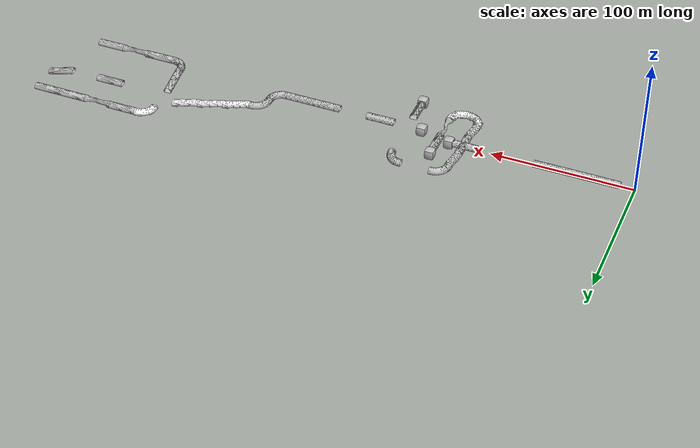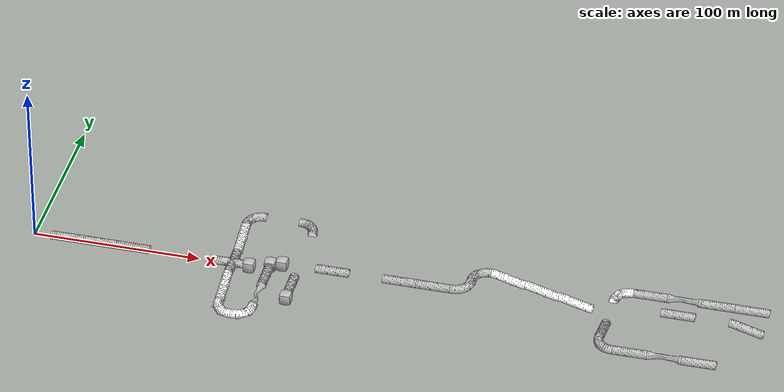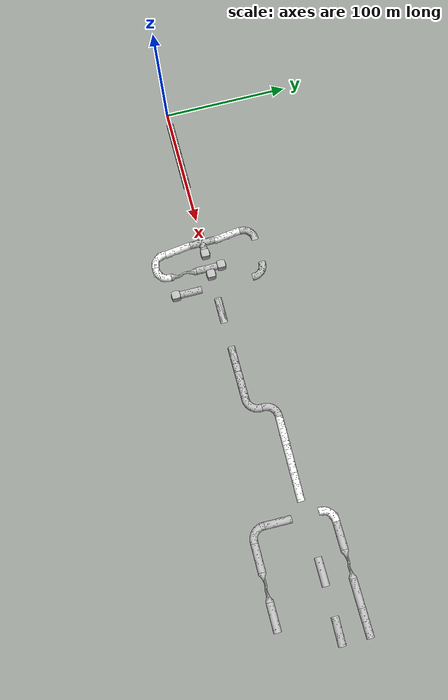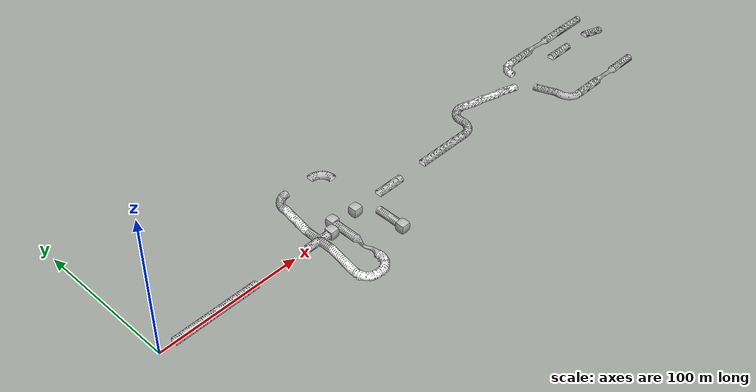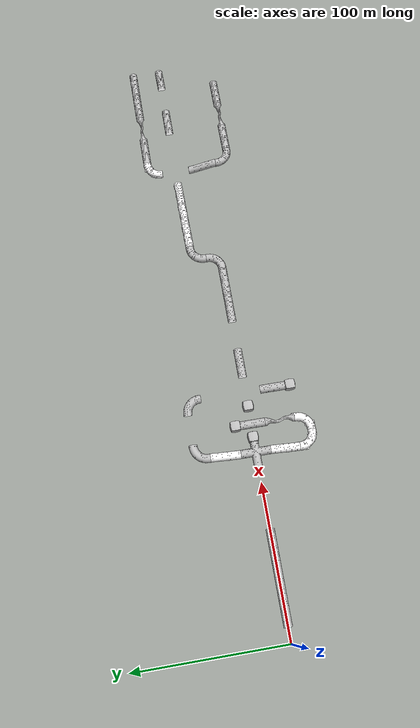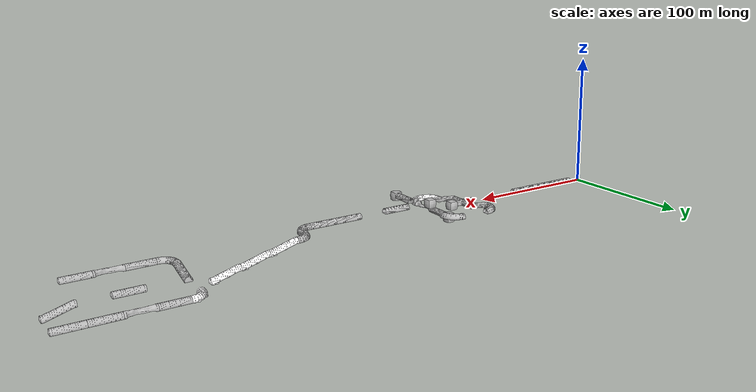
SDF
<sdf version="1.6">
 <world name="tunnel_circuit_practice_02">
  <include><name>artifact_origin</name><pose>10 0 0.0 0 0 0</pose><uri>model://fiducial</uri></include>
  <include>
   <name>tile_24</name>
   <uri>model://tunnel_tile_2</uri>
   <pose>120.000000 40.000000 5.000000 0 0 0.000000</pose>
  </include>
  <include>
   <name>extinguisher_1</name>
   <uri>model://Extinguisher</uri>
   <pose>157.240997 34.343399 5.049100 0 0 1.570796</pose>
  </include>
  <include>
   <name>tile_26</name>
   <uri>model://tunnel_tile_2</uri>
   <pose>160.000000 40.000000 5.000000 0 0 -1.570796</pose>
  </include>
  <include>
   <name>tile_27</name>
   <uri>model://Rough Tunnel Tile 90-degree Turn</uri>
   <pose>340.000000 40.000000 -10.000000 0 0 0.000000</pose>
  </include>
  <include>
   <name>tile_28</name>
   <uri>model://tunnel_tile_5</uri>
   <pose>360.000000 40.000000 -10.000000 0 0 1.570796</pose>
  </include>
  <include>
   <name>tile_29</name>
   <uri>model://constrained_tunnel_tile_tall</uri>
   <pose>380.000000 40.000000 -10.000000 0 0 1.570796</pose>
  </include>
  <include>
   <name>tile_30</name>
   <uri>model://tunnel_tile_5</uri>
   <pose>400.000000 40.000000 -10.000000 0 0 1.570796</pose>
  </include>
  <include>
   <name>phone_1</name>
   <uri>model://Phone</uri>
   <pose>402.489014 42.056599 -9.962280 -1.570796 0 1.570796</pose>
  </include>
  <include>
   <name>tile_31</name>
   <uri>model://tunnel_tile_5</uri>
   <pose>420.000000 40.000000 -10.000000 0 0 1.570796</pose>
  </include>
  <include>
   <name>tile_79</name>
   <uri>model://Rough Tunnel Tile Ramp</uri>
   <pose>120.000000 20.000000 0.000000 0 0 0.000000</pose>
  </include>
  <include>
   <name>tile_81</name>
   <uri>model://tunnel_tile_2</uri>
   <pose>260.000000 20.000000 5.000000 0 0 0.000000</pose>
  </include>
  <include>
   <name>tile_82</name>
   <uri>model://Rough Tunnel Tile Ramp</uri>
   <pose>280.000000 20.000000 0.000000 0 0 1.570796</pose>
  </include>
  <include>
   <name>tile_83</name>
   <uri>model://Rough Tunnel Tile Ramp</uri>
   <pose>300.000000 20.000000 -5.000000 0 0 1.570796</pose>
  </include>
  <include>
   <name>tile_84</name>
   <uri>model://Rough Tunnel Tile Ramp</uri>
   <pose>320.000000 20.000000 -10.000000 0 0 1.570796</pose>
  </include>
  <include>
   <name>tile_87</name>
   <uri>model://tunnel_tile_5</uri>
   <pose>380.000000 20.000000 -5.000000 0 0 1.570796</pose>
  </include>
  <include>
   <name>tile_89</name>
   <uri>model://tunnel_tile_6</uri>
   <pose>420.000000 20.000000 -10.000000 0 0 1.570796</pose>
  </include>
  <include>
   <name>tile_125</name>
   <uri>model://tunnel_tile_5</uri>
   <pose>20.000000 0.000000 0.000000 0 0 -1.570796</pose>
  </include>
  <include>
   <name>tile_126</name>
   <uri>model://tunnel_tile_5</uri>
   <pose>40.000000 0.000000 0.000000 0 0 -1.570796</pose>
  </include>
  <include>
   <name>tile_127</name>
   <uri>model://tunnel_tile_5</uri>
   <pose>60.000000 0.000000 0.000000 0 0 -1.570796</pose>
  </include>
  <include>
   <name>tile_130</name>
   <uri>model://tunnel_tile_1</uri>
   <pose>120.000000 0.000000 0.000000 0 0 1.570796</pose>
  </include>
  <include>
   <name>tile_131</name>
   <uri>model://tunnel_tile_blocker</uri>
   <pose>130.000000 0.000000 0.000000 0 0 1.570796</pose>
  </include>
  <include>
   <name>tile_132</name>
   <uri>model://tunnel_tile_5</uri>
   <pose>140.000000 0.000000 -5.000000 0 0 -3.141593</pose>
  </include>
  <include>
   <name>tile_133</name>
   <uri>model://tunnel_tile_blocker</uri>
   <pose>140.000000 10.000000 -5.000000 0 0 -1.570796</pose>
  </include>
  <include>
   <name>tile_135</name>
   <uri>model://tunnel_tile_blocker</uri>
   <pose>150.000000 0.000000 5.000000 0 0 1.570796</pose>
  </include>
  <include>
   <name>tile_136</name>
   <uri>model://tunnel_tile_5</uri>
   <pose>180.000000 0.000000 5.000000 0 0 1.570796</pose>
  </include>
  <include>
   <name>tile_138</name>
   <uri>model://tunnel_tile_5</uri>
   <pose>220.000000 0.000000 5.000000 0 0 1.570796</pose>
  </include>
  <include>
   <name>tile_139</name>
   <uri>model://tunnel_tile_5</uri>
   <pose>240.000000 0.000000 5.000000 0 0 1.570796</pose>
  </include>
  <include>
   <name>tile_140</name>
   <uri>model://tunnel_tile_2</uri>
   <pose>260.000000 0.000000 5.000000 0 0 -3.141593</pose>
  </include>
  <include>
   <name>tile_141</name>
   <uri>model://tunnel_tile_6</uri>
   <pose>340.000000 0.000000 -10.000000 0 0 -3.141593</pose>
  </include>
  <include>
   <name>tile_169</name>
   <uri>model://Rough Tunnel Tile Ramp</uri>
   <pose>120.000000 -20.000000 -5.000000 0 0 0.000000</pose>
  </include>
  <include>
   <name>phone_4</name>
   <uri>model://Phone</uri>
   <pose>139.695999 -0.952587 -4.979580 -1.553343 0 1.570796</pose>
  </include>
  <include>
   <name>tile_170</name>
   <uri>model://constrained_tunnel_tile_short</uri>
   <pose>140.000000 -20.000000 -5.000000 0 0 -3.141593</pose>
  </include>
  <include>
   <name>tile_171</name>
   <uri>model://tunnel_tile_5</uri>
   <pose>160.000000 -20.000000 5.000000 0 0 -3.141593</pose>
  </include>
  <include>
   <name>tile_172</name>
   <uri>model://tunnel_tile_blocker</uri>
   <pose>160.000000 -30.000000 5.000000 0 0 -1.570796</pose>
  </include>
  <include>
   <name>tile_173</name>
   <uri>model://tunnel_tile_2</uri>
   <pose>340.000000 -20.000000 -5.000000 0 0 1.570796</pose>
  </include>
  <include>
   <name>tile_174</name>
   <uri>model://tunnel_tile_5</uri>
   <pose>360.000000 -20.000000 -5.000000 0 0 1.570796</pose>
  </include>
  <include>
   <name>tile_175</name>
   <uri>model://constrained_tunnel_tile_tall</uri>
   <pose>380.000000 -20.000000 -5.000000 0 0 1.570796</pose>
  </include>
  <include>
   <name>tile_176</name>
   <uri>model://tunnel_tile_5</uri>
   <pose>400.000000 -20.000000 -5.000000 0 0 1.570796</pose>
  </include>
  <include>
   <name>backpack_4</name>
   <uri>model://Backpack</uri>
   <pose>408.876007 -21.858601 -4.976150 0 0 2.897247</pose>
  </include>
  <include>
   <name>tile_188</name>
   <uri>model://Rough Tunnel Tile 90-degree Turn</uri>
   <pose>120.000000 -40.000000 -5.000000 0 0 1.570796</pose>
  </include>
  <include>
   <name>tile_189</name>
   <uri>model://Rough Tunnel Tile 90-degree Turn</uri>
   <pose>140.000000 -40.000000 -5.000000 0 0 -3.141593</pose>
  </include>
 </world>
</sdf>
